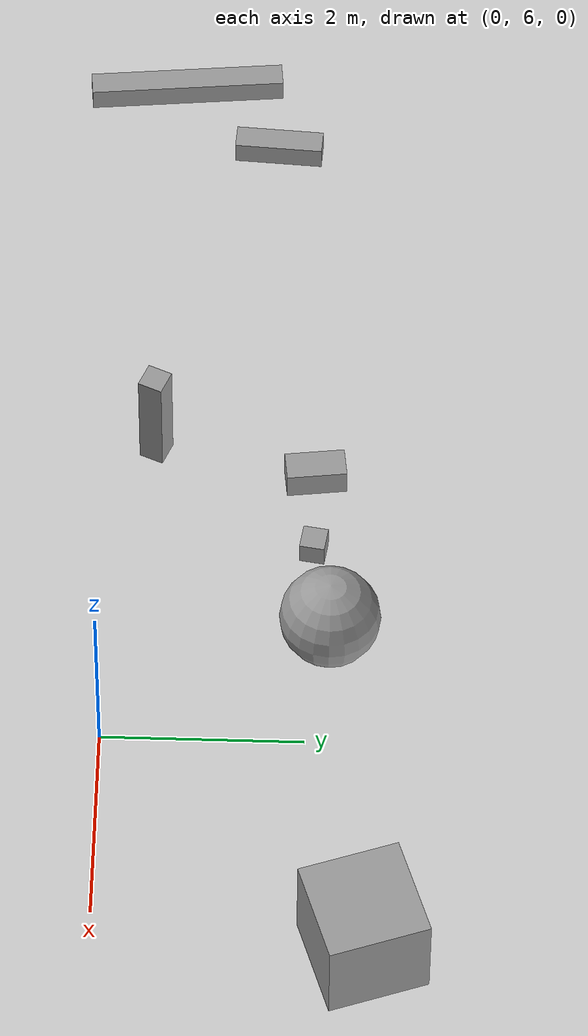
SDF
<sdf version="1.7">
 <world name="default">
  <model name="ground_plane">
   <static>1</static>
   <link name="link">
    <collision name="collision">
     <geometry><plane><normal>0 0 1</normal><size>100 100</size></plane></geometry>
     <surface><friction><ode><mu>100</mu><mu2>50</mu2></ode></friction></surface>
    </collision>
    <visual name="visual">
     <cast_shadows>0</cast_shadows>
     <geometry><plane><normal>0 0 1</normal><size>100 100</size></plane></geometry>
     <material>
      <script><uri>file://media/materials/scripts/gazebo.material</uri><name>Gazebo/Grey</name></script>
     </material>
    </visual>
   </link>
  </model>
  <model name="unit_box_0.6">
   <link name="link">
    <inertial>
     <mass>1</mass>
     <inertia>
      <ixx>0.166667</ixx>
      <ixy>0</ixy>
      <ixz>0</ixz>
      <iyy>0.166667</iyy>
      <iyz>0</iyz>
      <izz>0.166667</izz>
     </inertia>
    </inertial>
    <pose>0.033703 0.185129 -0 0 -0 0</pose>
    <visual name="visual">
     <geometry><box><size>0.3 0.3 0.6</size></box></geometry>
     <material>
      <lighting>1</lighting>
      <script><uri>file://media/materials/scripts/gazebo.material</uri><name>Gazebo/Grey</name></script>
      <shader type="pixel"><normal_map>__default__</normal_map></shader>
      <ambient>0.3 0.3 0.3 1</ambient>
      <diffuse>0.7 0.7 0.7 1</diffuse>
      <specular>0.01 0.01 0.01 1</specular>
      <emissive>0 0 0 1</emissive>
     </material>
    </visual>
    <collision name="collision">
     <geometry><box><size>0.3 0.3 0.6</size></box></geometry>
     <surface>
      <friction>
       <ode><mu>1</mu><mu2>1</mu2><fdir1>0 0 0</fdir1><slip1>0</slip1><slip2>0</slip2></ode>
       <torsional>
        <coefficient>1</coefficient>
        <patch_radius>0</patch_radius>
        <surface_radius>0</surface_radius>
        <use_patch_radius>1</use_patch_radius>
        <ode><slip>0</slip></ode>
       </torsional>
      </friction>
      <bounce><restitution_coefficient>0</restitution_coefficient><threshold>1e+06</threshold></bounce>
      <contact>
       <collide_without_contact>0</collide_without_contact>
       <collide_without_contact_bitmask>1</collide_without_contact_bitmask>
       <collide_bitmask>1</collide_bitmask>
       <ode>
        <soft_cfm>0</soft_cfm>
        <soft_erp>0.2</soft_erp>
        <kp>1e+13</kp>
        <kd>1</kd>
        <max_vel>0.01</max_vel>
        <min_depth>0</min_depth>
       </ode>
       <bullet>
        <split_impulse>1</split_impulse>
        <split_impulse_penetration_threshold>-0.01</split_impulse_penetration_threshold>
        <soft_cfm>0</soft_cfm>
        <soft_erp>0.2</soft_erp>
        <kp>1e+13</kp>
        <kd>1</kd>
       </bullet>
      </contact>
     </surface>
    </collision>
   </link>
   <static>0</static>
   <pose>-3.32439 8.01435 0.183703 -1.6882 1.57079 3.14159</pose>
  </model>
  <model name="unit_box_0.25">
   <link name="link">
    <inertial>
     <mass>1</mass>
     <inertia>
      <ixx>0.166667</ixx>
      <ixy>0</ixy>
      <ixz>0</ixz>
      <iyy>0.166667</iyy>
      <iyz>0</iyz>
      <izz>0.166667</izz>
     </inertia>
    </inertial>
    <pose>0.033703 0.185129 -0 0 -0 0</pose>
    <visual name="visual">
     <geometry><box><size>0.25 0.25 0.25</size></box></geometry>
     <material>
      <lighting>1</lighting>
      <script><uri>file://media/materials/scripts/gazebo.material</uri><name>Gazebo/Grey</name></script>
      <shader type="pixel"><normal_map>__default__</normal_map></shader>
      <ambient>0.3 0.3 0.3 1</ambient>
      <diffuse>0.7 0.7 0.7 1</diffuse>
      <specular>0.01 0.01 0.01 1</specular>
      <emissive>0 0 0 1</emissive>
     </material>
    </visual>
    <collision name="collision">
     <geometry><box><size>0.25 0.25 0.25</size></box></geometry>
     <surface>
      <friction>
       <ode><mu>1</mu><mu2>1</mu2><fdir1>0 0 0</fdir1><slip1>0</slip1><slip2>0</slip2></ode>
       <torsional>
        <coefficient>1</coefficient>
        <patch_radius>0</patch_radius>
        <surface_radius>0</surface_radius>
        <use_patch_radius>1</use_patch_radius>
        <ode><slip>0</slip></ode>
       </torsional>
      </friction>
      <bounce><restitution_coefficient>0</restitution_coefficient><threshold>1e+06</threshold></bounce>
      <contact>
       <collide_without_contact>0</collide_without_contact>
       <collide_without_contact_bitmask>1</collide_without_contact_bitmask>
       <collide_bitmask>1</collide_bitmask>
       <ode>
        <soft_cfm>0</soft_cfm>
        <soft_erp>0.2</soft_erp>
        <kp>1e+13</kp>
        <kd>1</kd>
        <max_vel>0.01</max_vel>
        <min_depth>0</min_depth>
       </ode>
       <bullet>
        <split_impulse>1</split_impulse>
        <split_impulse_penetration_threshold>-0.01</split_impulse_penetration_threshold>
        <soft_cfm>0</soft_cfm>
        <soft_erp>0.2</soft_erp>
        <kp>1e+13</kp>
        <kd>1</kd>
       </bullet>
      </contact>
     </surface>
    </collision>
   </link>
   <static>0</static>
   <pose>-2.33176 7.86057 0.125 0 0 -0.156402</pose>
  </model>
  <model name="unit_box_2">
   <link name="link">
    <inertial>
     <mass>1</mass>
     <inertia>
      <ixx>0.166667</ixx>
      <ixy>0</ixy>
      <ixz>0</ixz>
      <iyy>0.166667</iyy>
      <iyz>0</iyz>
      <izz>0.166667</izz>
     </inertia>
    </inertial>
    <pose>0.033703 0.185129 -0 0 -0 0</pose>
    <visual name="visual">
     <geometry><box><size>0.25 0.25 2</size></box></geometry>
     <material>
      <lighting>1</lighting>
      <script><uri>file://media/materials/scripts/gazebo.material</uri><name>Gazebo/Grey</name></script>
      <shader type="pixel"><normal_map>__default__</normal_map></shader>
      <ambient>0.3 0.3 0.3 1</ambient>
      <diffuse>0.7 0.7 0.7 1</diffuse>
      <specular>0.01 0.01 0.01 1</specular>
      <emissive>0 0 0 1</emissive>
     </material>
    </visual>
    <collision name="collision">
     <geometry><box><size>0.25 0.25 2</size></box></geometry>
     <surface>
      <friction>
       <ode><mu>1</mu><mu2>1</mu2><fdir1>0 0 0</fdir1><slip1>0</slip1><slip2>0</slip2></ode>
       <torsional>
        <coefficient>1</coefficient>
        <patch_radius>0</patch_radius>
        <surface_radius>0</surface_radius>
        <use_patch_radius>1</use_patch_radius>
        <ode><slip>0</slip></ode>
       </torsional>
      </friction>
      <bounce><restitution_coefficient>0</restitution_coefficient><threshold>1e+06</threshold></bounce>
      <contact>
       <collide_without_contact>0</collide_without_contact>
       <collide_without_contact_bitmask>1</collide_without_contact_bitmask>
       <collide_bitmask>1</collide_bitmask>
       <ode>
        <soft_cfm>0</soft_cfm>
        <soft_erp>0.2</soft_erp>
        <kp>1e+13</kp>
        <kd>1</kd>
        <max_vel>0.01</max_vel>
        <min_depth>0</min_depth>
       </ode>
       <bullet>
        <split_impulse>1</split_impulse>
        <split_impulse_penetration_threshold>-0.01</split_impulse_penetration_threshold>
        <soft_cfm>0</soft_cfm>
        <soft_erp>0.2</soft_erp>
        <kp>1e+13</kp>
        <kd>1</kd>
       </bullet>
      </contact>
     </surface>
    </collision>
   </link>
   <static>0</static>
   <pose>-7.95114 6.58853 0.158643 0.002564 1.57074 1.66537</pose>
  </model>
  <model name="unit_box_0.9">
   <link name="link">
    <inertial>
     <mass>1</mass>
     <inertia>
      <ixx>0.166667</ixx>
      <ixy>0</ixy>
      <ixz>0</ixz>
      <iyy>0.166667</iyy>
      <iyz>0</iyz>
      <izz>0.166667</izz>
     </inertia>
    </inertial>
    <pose>0.033703 0.185129 -0 0 -0 0</pose>
    <visual name="visual">
     <geometry><box><size>0.25 0.25 0.9</size></box></geometry>
     <material>
      <lighting>1</lighting>
      <script><uri>file://media/materials/scripts/gazebo.material</uri><name>Gazebo/Grey</name></script>
      <shader type="pixel"><normal_map>__default__</normal_map></shader>
      <ambient>0.3 0.3 0.3 1</ambient>
      <diffuse>0.7 0.7 0.7 1</diffuse>
      <specular>0.01 0.01 0.01 1</specular>
      <emissive>0 0 0 1</emissive>
     </material>
    </visual>
    <collision name="collision">
     <geometry><box><size>0.25 0.25 0.9</size></box></geometry>
     <surface>
      <friction>
       <ode><mu>1</mu><mu2>1</mu2><fdir1>0 0 0</fdir1><slip1>0</slip1><slip2>0</slip2></ode>
       <torsional>
        <coefficient>1</coefficient>
        <patch_radius>0</patch_radius>
        <surface_radius>0</surface_radius>
        <use_patch_radius>1</use_patch_radius>
        <ode><slip>0</slip></ode>
       </torsional>
      </friction>
      <bounce><restitution_coefficient>0</restitution_coefficient><threshold>1e+06</threshold></bounce>
      <contact>
       <collide_without_contact>0</collide_without_contact>
       <collide_without_contact_bitmask>1</collide_without_contact_bitmask>
       <collide_bitmask>1</collide_bitmask>
       <ode>
        <soft_cfm>0</soft_cfm>
        <soft_erp>0.2</soft_erp>
        <kp>1e+13</kp>
        <kd>1</kd>
        <max_vel>0.01</max_vel>
        <min_depth>0</min_depth>
       </ode>
       <bullet>
        <split_impulse>1</split_impulse>
        <split_impulse_penetration_threshold>-0.01</split_impulse_penetration_threshold>
        <soft_cfm>0</soft_cfm>
        <soft_erp>0.2</soft_erp>
        <kp>1e+13</kp>
        <kd>1</kd>
       </bullet>
      </contact>
     </surface>
    </collision>
   </link>
   <static>0</static>
   <pose>-7.38119 7.56237 0.310129 -1.5708 -0 -0.065155</pose>
  </model>
  <model name="unit_box_1.2">
   <link name="link">
    <inertial>
     <mass>1</mass>
     <inertia>
      <ixx>0.166667</ixx>
      <ixy>0</ixy>
      <ixz>0</ixz>
      <iyy>0.166667</iyy>
      <iyz>0</iyz>
      <izz>0.166667</izz>
     </inertia>
    </inertial>
    <pose>0.033703 0.185129 -0 0 -0 0</pose>
    <visual name="visual">
     <geometry><box><size>0.25 0.25 1.2</size></box></geometry>
     <material>
      <lighting>1</lighting>
      <script><uri>file://media/materials/scripts/gazebo.material</uri><name>Gazebo/Grey</name></script>
      <shader type="pixel"><normal_map>__default__</normal_map></shader>
      <ambient>0.3 0.3 0.3 1</ambient>
      <diffuse>0.7 0.7 0.7 1</diffuse>
      <specular>0.01 0.01 0.01 1</specular>
      <emissive>0 0 0 1</emissive>
     </material>
    </visual>
    <collision name="collision">
     <geometry><box><size>0.25 0.25 1.2</size></box></geometry>
     <surface>
      <friction>
       <ode><mu>1</mu><mu2>1</mu2><fdir1>0 0 0</fdir1><slip1>0</slip1><slip2>0</slip2></ode>
       <torsional>
        <coefficient>1</coefficient>
        <patch_radius>0</patch_radius>
        <surface_radius>0</surface_radius>
        <use_patch_radius>1</use_patch_radius>
        <ode><slip>0</slip></ode>
       </torsional>
      </friction>
      <bounce><restitution_coefficient>0</restitution_coefficient><threshold>1e+06</threshold></bounce>
      <contact>
       <collide_without_contact>0</collide_without_contact>
       <collide_without_contact_bitmask>1</collide_without_contact_bitmask>
       <collide_bitmask>1</collide_bitmask>
       <ode>
        <soft_cfm>0</soft_cfm>
        <soft_erp>0.2</soft_erp>
        <kp>1e+13</kp>
        <kd>1</kd>
        <max_vel>0.01</max_vel>
        <min_depth>0</min_depth>
       </ode>
       <bullet>
        <split_impulse>1</split_impulse>
        <split_impulse_penetration_threshold>-0.01</split_impulse_penetration_threshold>
        <soft_cfm>0</soft_cfm>
        <soft_erp>0.2</soft_erp>
        <kp>1e+13</kp>
        <kd>1</kd>
       </bullet>
      </contact>
     </surface>
    </collision>
   </link>
   <static>0</static>
   <pose>-3.58847 6.26602 0.6 3e-06 -0 -0.403824</pose>
  </model>
  <model name="unit_box">
   <pose>2.39384 8.61322 0.499996 -0 -8e-06 0.328842</pose>
   <link name="link">
    <inertial>
     <mass>1</mass>
     <inertia>
      <ixx>0.166667</ixx>
      <ixy>0</ixy>
      <ixz>0</ixz>
      <iyy>0.166667</iyy>
      <iyz>0</iyz>
      <izz>0.166667</izz>
     </inertia>
    </inertial>
    <collision name="collision"><geometry><box><size>1 1 1</size></box></geometry></collision>
    <visual name="visual">
     <geometry><box><size>1 1 1</size></box></geometry>
     <material>
      <script><name>Gazebo/Grey</name><uri>file://media/materials/scripts/gazebo.material</uri></script>
     </material>
    </visual>
   </link>
  </model>
  <model name="unit_sphere">
   <pose>-1.15301 8.22042 0.5 -0.009023 -0.033424 0.000236</pose>
   <link name="link">
    <inertial>
     <mass>1</mass>
     <inertia><ixx>0.1</ixx><ixy>0</ixy><ixz>0</ixz><iyy>0.1</iyy><iyz>0</iyz><izz>0.1</izz></inertia>
    </inertial>
    <collision name="collision"><geometry><sphere><radius>0.5</radius></sphere></geometry></collision>
    <visual name="visual">
     <geometry><sphere><radius>0.5</radius></sphere></geometry>
     <material>
      <script><name>Gazebo/Grey</name><uri>file://media/materials/scripts/gazebo.material</uri></script>
     </material>
    </visual>
   </link>
  </model>
 </world>
</sdf>
